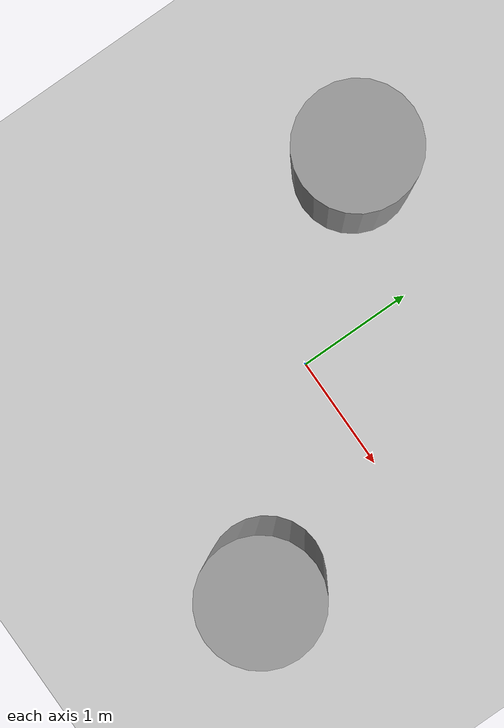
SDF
<sdf version="1.7">
 <world name="default">
  <light name="sun" type="directional">
   <pose>0 0 10 0 -0 0</pose>
   <diffuse>0.8 0.8 0.8 1</diffuse>
   <specular>0.2 0.2 0.2 1</specular>
   <attenuation>
    <range>1000</range>
    <constant>0.9</constant>
    <linear>0.01</linear>
    <quadratic>0.001</quadratic>
   </attenuation>
   <direction>-0.5 0.1 -0.9</direction>
   <spot><inner_angle>0</inner_angle><outer_angle>0</outer_angle><falloff>0</falloff></spot>
  </light>
  <model name="ground_plane">
   <static>1</static>
   <link name="link">
    <collision name="collision">
     <geometry><plane><normal>0 0 1</normal><size>100 100</size></plane></geometry>
     <surface><friction><ode><mu>100</mu><mu2>50</mu2></ode></friction></surface>
    </collision>
    <visual name="visual">
     <cast_shadows>0</cast_shadows>
     <geometry><plane><normal>0 0 1</normal><size>100 100</size></plane></geometry>
     <material>
      <script><uri>file://media/materials/scripts/gazebo.material</uri><name>Gazebo/Grey</name></script>
     </material>
    </visual>
   </link>
  </model>
  <gravity>0 0 -9.8</gravity>
  <magnetic_field>6e-06 2.3e-05 -4.2e-05</magnetic_field>
  <atmosphere type="adiabatic"/>
  <physics type="ode">
   <max_step_size>0.001</max_step_size>
   <real_time_factor>1</real_time_factor>
   <real_time_update_rate>1000</real_time_update_rate>
  </physics>
  <scene><ambient>0.4 0.4 0.4 1</ambient><background>0.7 0.7 0.7 1</background><shadows>1</shadows></scene>
  <audio><device>default</device></audio>
  <spherical_coordinates>
   <surface_model>EARTH_WGS84</surface_model>
   <latitude_deg>0</latitude_deg>
   <longitude_deg>0</longitude_deg>
   <elevation>0</elevation>
   <heading_deg>0</heading_deg>
  </spherical_coordinates>
  <light name="sun" type="directional">
   <pose>-6.53232 4.53725 10 0 -0 0</pose>
   <diffuse>0.8 0.8 0.8 1</diffuse>
   <specular>0.2 0.2 0.2 1</specular>
   <attenuation>
    <range>1000</range>
    <constant>0.9</constant>
    <linear>0.01</linear>
    <quadratic>0.001</quadratic>
   </attenuation>
   <direction>-0.5 0.1 -0.9</direction>
  </light>
  <model name="unit_cylinder">
   <pose>1.25533 -1.27044 0.499993 -5e-06 -5e-06 0</pose>
   <link name="link">
    <inertial>
     <mass>1</mass>
     <inertia><ixx>0.145833</ixx><ixy>0</ixy><ixz>0</ixz><iyy>0.145833</iyy><iyz>0</iyz><izz>0.125</izz></inertia>
    </inertial>
    <collision name="collision">
     <geometry><cylinder><radius>0.5</radius><length>1</length></cylinder></geometry>
    </collision>
    <visual name="visual">
     <geometry><cylinder><radius>0.5</radius><length>1</length></cylinder></geometry>
     <material>
      <script><name>Gazebo/Grey</name><uri>file://media/materials/scripts/gazebo.material</uri></script>
     </material>
    </visual>
   </link>
  </model>
  <model name="unit_cylinder_clone">
   <pose>-1.07861 1.22754 0.499996 -5e-06 -5e-06 -2e-06</pose>
   <link name="link">
    <inertial>
     <mass>1</mass>
     <inertia><ixx>0.145833</ixx><ixy>0</ixy><ixz>0</ixz><iyy>0.145833</iyy><iyz>0</iyz><izz>0.125</izz></inertia>
    </inertial>
    <collision name="collision">
     <geometry><cylinder><radius>0.5</radius><length>1</length></cylinder></geometry>
    </collision>
    <visual name="visual">
     <geometry><cylinder><radius>0.5</radius><length>1</length></cylinder></geometry>
     <material>
      <script><name>Gazebo/Grey</name><uri>file://media/materials/scripts/gazebo.material</uri></script>
     </material>
    </visual>
   </link>
  </model>
 </world>
</sdf>
